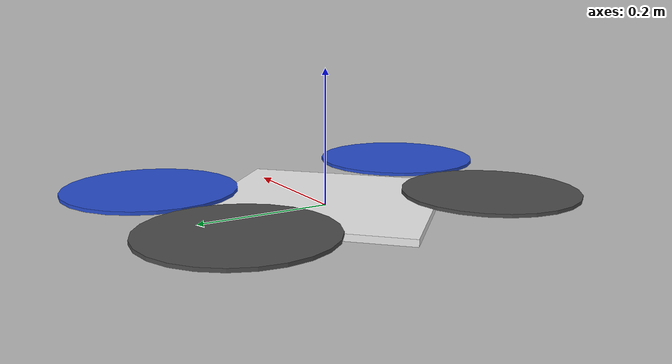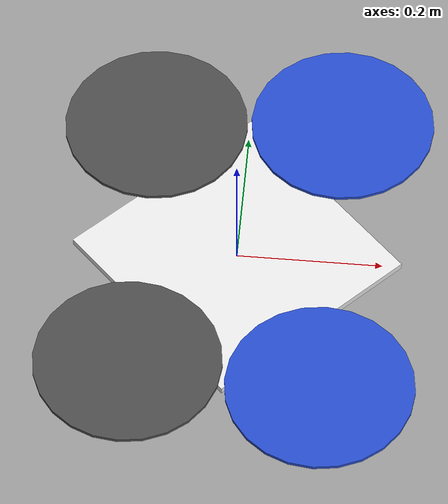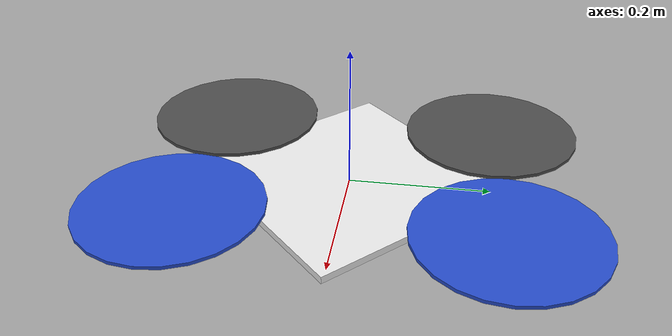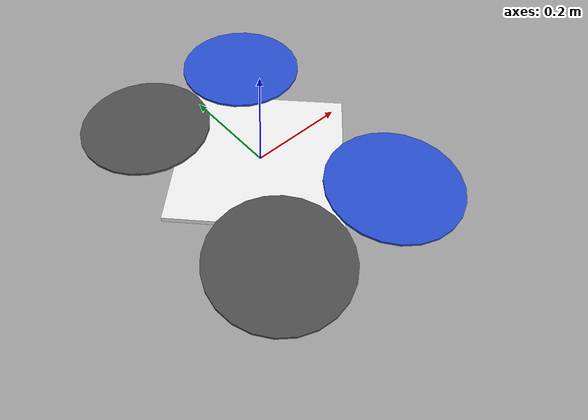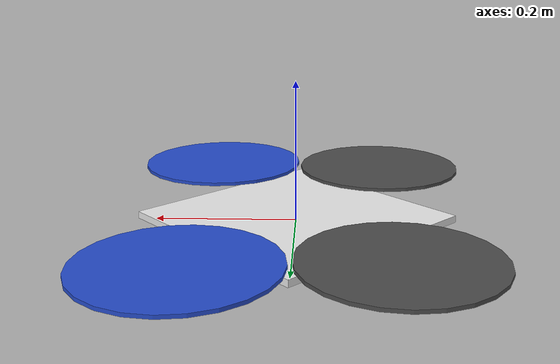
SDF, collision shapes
<?xml version='1.0'?>
<sdf version='1.6'>
  <model name='emborocket_new'>
    <link name='/imu_link'>
      <pose frame=''>-0 -0 0.75 0 -0 0</pose>
      <inertial>
        <pose frame=''>0 0 0 0 -0 0</pose>
        <mass>0.015</mass>
        <inertia>
          <ixx>1e-05</ixx>
          <ixy>0</ixy>
          <ixz>0</ixz>
          <iyy>1e-05</iyy>
          <iyz>0</iyz>
          <izz>1e-05</izz>
        </inertia>
      </inertial>
      <self_collide>0</self_collide>
      <enable_wind>0</enable_wind>
      <kinematic>0</kinematic>
      <gravity>1</gravity>
    </link>
    <link name='base_link'>
      <pose frame=''>-0 -0 0.75 0 -0 0</pose>
      <inertial>
        <pose frame=''>0 0 0 0 -0 0</pose>
        <mass>1</mass>
        <inertia>
          <ixx>0.0194167</ixx>
          <ixy>0</ixy>
          <ixz>0</ixz>
          <iyy>0.0194167</iyy>
          <iyz>0</iyz>
          <izz>0.0368167</izz>
        </inertia>
      </inertial>
      <gravity>1</gravity>
      <velocity_decay/>
      <self_collide>0</self_collide>
      <enable_wind>0</enable_wind>
      <kinematic>0</kinematic>
      <visual name='base_link_inertia_visual'>
        <pose frame=''>0 0 -0.75 0 -0 0</pose>
        <geometry>
          <mesh>
            <scale>0.001 0.001 0.001</scale>
            <uri>model://rotors_description/meshes/rocket_body.stl</uri>
          </mesh>
        </geometry>
        <material>
          <script>
            <name>Gazebo/White</name>
            <uri>file://media/materials/scripts/gazebo.material</uri>
          </script>
          <shader type='pixel'>
            <normal_map>__default__</normal_map>
          </shader>
          <ambient>1 1 1 1</ambient>
          <diffuse>1 1 1 1</diffuse>
          <specular>0 0 0 1</specular>
          <emissive>0 0 0 1</emissive>
        </material>
        <transparency>0</transparency>
        <cast_shadows>1</cast_shadows>
      </visual>
      <collision name='base_link_inertia_collision'>
        <laser_retro>0</laser_retro>
        <max_contacts>10</max_contacts>
        <pose frame=''>0 0 -0.745 0 -0 0.78</pose>
        <geometry>
          <box>
            <size>0.32 0.32 0.01</size>
          </box>
        </geometry>
        <surface>
          <friction>
            <ode>
              <mu>1</mu>
              <mu2>1</mu2>
              <fdir1>0 0 0</fdir1>
              <slip1>0</slip1>
              <slip2>0</slip2>
            </ode>
            <torsional>
              <coefficient>1</coefficient>
              <patch_radius>0</patch_radius>
              <surface_radius>0</surface_radius>
              <use_patch_radius>1</use_patch_radius>
              <ode>
                <slip>0</slip>
              </ode>
            </torsional>
          </friction>
          <bounce>
            <restitution_coefficient>0</restitution_coefficient>
            <threshold>1e+06</threshold>
          </bounce>
          <contact>
            <collide_without_contact>0</collide_without_contact>
            <collide_without_contact_bitmask>1</collide_without_contact_bitmask>
            <collide_bitmask>1</collide_bitmask>
            <ode>
              <soft_cfm>0</soft_cfm>
              <soft_erp>0.2</soft_erp>
              <kp>1e+13</kp>
              <kd>1</kd>
              <max_vel>0</max_vel>
              <min_depth>0.001</min_depth>
            </ode>
            <bullet>
              <split_impulse>1</split_impulse>
              <split_impulse_penetration_threshold>-0.01</split_impulse_penetration_threshold>
              <soft_cfm>0</soft_cfm>
              <soft_erp>0.2</soft_erp>
              <kp>1e+13</kp>
              <kd>1</kd>
            </bullet>
          </contact>
        </surface>
      </collision>
    </link>
    <link name='rotor_0'>
      <pose frame=''>0.13 -0.22 0.023 0 -0 0</pose>
      <inertial>
        <pose frame=''>0 0 0 0 -0 0</pose>
        <mass>0.005</mass>
        <inertia>
          <ixx>9.7e-07</ixx>
          <ixy>0</ixy>
          <ixz>0</ixz>
          <iyy>0.0002731</iyy>
          <iyz>0</iyz>
          <izz>0.000274</izz>
        </inertia>
      </inertial>
      <gravity>1</gravity>
      <velocity_decay/>
      <self_collide>0</self_collide>
      <enable_wind>0</enable_wind>
      <kinematic>0</kinematic>
      <visual name='rotor_0_visual'>
        <pose frame=''>0 -0.009 0 1.571 -0 0</pose>
        <geometry>
          <mesh>
            <uri>/home/lukas/Firmware/Tools/sitl_gazebo/models/rotors_description/meshes/propeller.stl</uri>
            <scale>0.001 0.001 0.001</scale>
          </mesh>
        </geometry>
        <material>
          <script>
            <name>Gazebo/Blue</name>
            <uri>file://media/materials/scripts/gazebo.material</uri>
          </script>
          <shader type='pixel'>
            <normal_map>__default__</normal_map>
          </shader>
          <ambient>0 0 1 1</ambient>
          <diffuse>0 0 1 1</diffuse>
          <specular>0.1 0.1 0.1 1</specular>
          <emissive>0 0 0 1</emissive>
        </material>
        <transparency>0</transparency>
        <cast_shadows>1</cast_shadows>
      </visual>
      <collision name='rotor_0_collision'>
        <laser_retro>0</laser_retro>
        <max_contacts>10</max_contacts>
        <pose frame=''>0 0 0 0 -0 0</pose>
        <geometry>
          <cylinder>
            <radius>0.128</radius>
            <length>0.005</length>
          </cylinder>
        </geometry>
        <surface>
          <friction>
            <ode>
              <mu>1</mu>
              <mu2>1</mu2>
              <fdir1>0 0 0</fdir1>
              <slip1>0</slip1>
              <slip2>0</slip2>
            </ode>
            <torsional>
              <coefficient>1</coefficient>
              <patch_radius>0</patch_radius>
              <surface_radius>0</surface_radius>
              <use_patch_radius>1</use_patch_radius>
              <ode>
                <slip>0</slip>
              </ode>
            </torsional>
          </friction>
          <bounce>
            <restitution_coefficient>0</restitution_coefficient>
            <threshold>1e+06</threshold>
          </bounce>
          <contact>
            <collide_without_contact>0</collide_without_contact>
            <collide_without_contact_bitmask>1</collide_without_contact_bitmask>
            <collide_bitmask>1</collide_bitmask>
            <ode>
              <soft_cfm>0</soft_cfm>
              <soft_erp>0.2</soft_erp>
              <kp>1e+13</kp>
              <kd>1</kd>
              <max_vel>0.01</max_vel>
              <min_depth>0</min_depth>
            </ode>
            <bullet>
              <split_impulse>1</split_impulse>
              <split_impulse_penetration_threshold>-0.01</split_impulse_penetration_threshold>
              <soft_cfm>0</soft_cfm>
              <soft_erp>0.2</soft_erp>
              <kp>1e+13</kp>
              <kd>1</kd>
            </bullet>
          </contact>
        </surface>
      </collision>
    </link>
    <link name='rotor_1'>
      <pose frame=''>-0.13 0.2 0.023 0 -0 0</pose>
      <inertial>
        <pose frame=''>0 0 0 0 -0 0</pose>
        <mass>0.005</mass>
        <inertia>
          <ixx>9.75e-07</ixx>
          <ixy>0</ixy>
          <ixz>0</ixz>
          <iyy>0.000273104</iyy>
          <iyz>0</iyz>
          <izz>0.000274004</izz>
        </inertia>
      </inertial>
      <gravity>1</gravity>
      <velocity_decay/>
      <self_collide>0</self_collide>
      <enable_wind>0</enable_wind>
      <kinematic>0</kinematic>
      <visual name='rotor_1_visual'>
        <pose frame=''>0 0 0 0 -0 0</pose>
        <geometry>
          <mesh>
            <scale>1 1 1</scale>
            <uri>model://rotors_description/meshes/iris_prop_ccw.dae</uri>
          </mesh>
        </geometry>
        <material>
          <script>
            <name>Gazebo/DarkGrey</name>
            <uri>file://media/materials/scripts/gazebo.material</uri>
          </script>
          <shader type='pixel'/>
        </material>
        <transparency>0</transparency>
        <cast_shadows>1</cast_shadows>
      </visual>
      <collision name='rotor_1_collision'>
        <laser_retro>0</laser_retro>
        <max_contacts>10</max_contacts>
        <pose frame=''>0 0 0 0 -0 0</pose>
        <geometry>
          <cylinder>
            <radius>0.128</radius>
            <length>0.005</length>
          </cylinder>
        </geometry>
        <surface>
          <friction>
            <ode>
              <mu>1</mu>
              <mu2>1</mu2>
              <fdir1>0 0 0</fdir1>
              <slip1>0</slip1>
              <slip2>0</slip2>
            </ode>
            <torsional>
              <coefficient>1</coefficient>
              <patch_radius>0</patch_radius>
              <surface_radius>0</surface_radius>
              <use_patch_radius>1</use_patch_radius>
              <ode>
                <slip>0</slip>
              </ode>
            </torsional>
          </friction>
          <bounce>
            <restitution_coefficient>0</restitution_coefficient>
            <threshold>1e+06</threshold>
          </bounce>
          <contact>
            <collide_without_contact>0</collide_without_contact>
            <collide_without_contact_bitmask>1</collide_without_contact_bitmask>
            <collide_bitmask>1</collide_bitmask>
            <ode>
              <soft_cfm>0</soft_cfm>
              <soft_erp>0.2</soft_erp>
              <kp>1e+13</kp>
              <kd>1</kd>
              <max_vel>0.01</max_vel>
              <min_depth>0</min_depth>
            </ode>
            <bullet>
              <split_impulse>1</split_impulse>
              <split_impulse_penetration_threshold>-0.01</split_impulse_penetration_threshold>
              <soft_cfm>0</soft_cfm>
              <soft_erp>0.2</soft_erp>
              <kp>1e+13</kp>
              <kd>1</kd>
            </bullet>
          </contact>
        </surface>
      </collision>
    </link>
    <link name='rotor_2'>
      <pose frame=''>0.13 0.22 0.023 0 -0 0</pose>
      <inertial>
        <pose frame=''>0 0 0 0 -0 0</pose>
        <mass>0.005</mass>
        <inertia>
          <ixx>9.75e-07</ixx>
          <ixy>0</ixy>
          <ixz>0</ixz>
          <iyy>0.000273104</iyy>
          <iyz>0</iyz>
          <izz>0.000274004</izz>
        </inertia>
      </inertial>
      <gravity>1</gravity>
      <velocity_decay/>
      <self_collide>0</self_collide>
      <enable_wind>0</enable_wind>
      <kinematic>0</kinematic>
      <visual name='rotor_2_visual'>
        <pose frame=''>0 0 0 0 -0 0</pose>
        <geometry>
          <mesh>
            <scale>1 1 1</scale>
            <uri>model://rotors_description/meshes/iris_prop_cw.dae</uri>
          </mesh>
        </geometry>
        <material>
          <script>
            <name>Gazebo/Blue</name>
            <uri>file://media/materials/scripts/gazebo.material</uri>
          </script>
          <shader type='pixel'/>
        </material>
        <transparency>0</transparency>
        <cast_shadows>1</cast_shadows>
      </visual>
      <collision name='rotor_2_collision'>
        <laser_retro>0</laser_retro>
        <max_contacts>10</max_contacts>
        <pose frame=''>0 0 0 0 -0 0</pose>
        <geometry>
          <cylinder>
            <radius>0.128</radius>
            <length>0.005</length>
          </cylinder>
        </geometry>
        <surface>
          <friction>
            <ode>
              <mu>1</mu>
              <mu2>1</mu2>
              <fdir1>0 0 0</fdir1>
              <slip1>0</slip1>
              <slip2>0</slip2>
            </ode>
            <torsional>
              <coefficient>1</coefficient>
              <patch_radius>0</patch_radius>
              <surface_radius>0</surface_radius>
              <use_patch_radius>1</use_patch_radius>
              <ode>
                <slip>0</slip>
              </ode>
            </torsional>
          </friction>
          <bounce>
            <restitution_coefficient>0</restitution_coefficient>
            <threshold>1e+06</threshold>
          </bounce>
          <contact>
            <collide_without_contact>0</collide_without_contact>
            <collide_without_contact_bitmask>1</collide_without_contact_bitmask>
            <collide_bitmask>1</collide_bitmask>
            <ode>
              <soft_cfm>0</soft_cfm>
              <soft_erp>0.2</soft_erp>
              <kp>1e+13</kp>
              <kd>1</kd>
              <max_vel>0.01</max_vel>
              <min_depth>0</min_depth>
            </ode>
            <bullet>
              <split_impulse>1</split_impulse>
              <split_impulse_penetration_threshold>-0.01</split_impulse_penetration_threshold>
              <soft_cfm>0</soft_cfm>
              <soft_erp>0.2</soft_erp>
              <kp>1e+13</kp>
              <kd>1</kd>
            </bullet>
          </contact>
        </surface>
      </collision>
    </link>
    <link name='rotor_3'>
      <pose frame=''>-0.13 -0.2 0.023 0 -0 0</pose>
      <inertial>
        <pose frame=''>0 0 0 0 -0 0</pose>
        <mass>0.005</mass>
        <inertia>
          <ixx>9.75e-07</ixx>
          <ixy>0</ixy>
          <ixz>0</ixz>
          <iyy>0.000273104</iyy>
          <iyz>0</iyz>
          <izz>0.000274004</izz>
        </inertia>
      </inertial>
      <gravity>1</gravity>
      <velocity_decay/>
      <self_collide>0</self_collide>
      <enable_wind>0</enable_wind>
      <kinematic>0</kinematic>
      <visual name='rotor_3_visual'>
        <pose frame=''>0 0 0 0 -0 0</pose>
        <geometry>
          <mesh>
            <scale>1 1 1</scale>
            <uri>model://rotors_description/meshes/iris_prop_cw.dae</uri>
          </mesh>
        </geometry>
        <material>
          <script>
            <name>Gazebo/DarkGrey</name>
            <uri>file://media/materials/scripts/gazebo.material</uri>
          </script>
          <shader type='pixel'/>
        </material>
        <transparency>0</transparency>
        <cast_shadows>1</cast_shadows>
      </visual>
      <collision name='rotor_3_collision'>
        <laser_retro>0</laser_retro>
        <max_contacts>10</max_contacts>
        <pose frame=''>0 0 0 0 -0 0</pose>
        <geometry>
          <cylinder>
            <radius>0.128</radius>
            <length>0.005</length>
          </cylinder>
        </geometry>
        <surface>
          <friction>
            <ode>
              <mu>1</mu>
              <mu2>1</mu2>
              <fdir1>0 0 0</fdir1>
              <slip1>0</slip1>
              <slip2>0</slip2>
            </ode>
            <torsional>
              <coefficient>1</coefficient>
              <patch_radius>0</patch_radius>
              <surface_radius>0</surface_radius>
              <use_patch_radius>1</use_patch_radius>
              <ode>
                <slip>0</slip>
              </ode>
            </torsional>
          </friction>
          <bounce>
            <restitution_coefficient>0</restitution_coefficient>
            <threshold>1e+06</threshold>
          </bounce>
          <contact>
            <collide_without_contact>0</collide_without_contact>
            <collide_without_contact_bitmask>1</collide_without_contact_bitmask>
            <collide_bitmask>1</collide_bitmask>
            <ode>
              <soft_cfm>0</soft_cfm>
              <soft_erp>0.2</soft_erp>
              <kp>1e+13</kp>
              <kd>1</kd>
              <max_vel>0.01</max_vel>
              <min_depth>0</min_depth>
            </ode>
            <bullet>
              <split_impulse>1</split_impulse>
              <split_impulse_penetration_threshold>-0.01</split_impulse_penetration_threshold>
              <soft_cfm>0</soft_cfm>
              <soft_erp>0.2</soft_erp>
              <kp>1e+13</kp>
              <kd>1</kd>
            </bullet>
          </contact>
        </surface>
      </collision>
    </link>
    <joint name='/imu_joint' type='revolute'>
      <parent>base_link</parent>
      <child>/imu_link</child>
      <pose frame=''>0 0 0 0 -0 0</pose>
      <axis>
        <xyz>1 0 0</xyz>
        <use_parent_model_frame>1</use_parent_model_frame>
        <limit>
          <lower>0</lower>
          <upper>0</upper>
          <effort>0</effort>
          <velocity>0</velocity>
        </limit>
        <dynamics>
          <spring_reference>0</spring_reference>
          <spring_stiffness>0</spring_stiffness>
          <damping>0</damping>
          <friction>0</friction>
        </dynamics>
      </axis>
      <physics>
        <ode>
          <limit>
            <cfm>0</cfm>
            <erp>0.2</erp>
          </limit>
          <suspension>
            <cfm>0</cfm>
            <erp>0.2</erp>
          </suspension>
        </ode>
      </physics>
    </joint>
    <joint name='rotor_0_joint' type='revolute'>
      <parent>base_link</parent>
      <child>rotor_0</child>
      <pose frame=''>0 0 0 0 -0 0</pose>
      <axis>
        <xyz>0 0 1</xyz>
        <use_parent_model_frame>1</use_parent_model_frame>
        <limit>
          <lower>-1e+16</lower>
          <upper>1e+16</upper>
          <effort>-1</effort>
          <velocity>-1</velocity>
        </limit>
        <dynamics>
          <spring_reference>0</spring_reference>
          <spring_stiffness>0</spring_stiffness>
          <damping>0</damping>
          <friction>0</friction>
        </dynamics>
      </axis>
      <physics>
        <ode>
          <limit>
            <cfm>0</cfm>
            <erp>0.2</erp>
          </limit>
          <suspension>
            <cfm>0</cfm>
            <erp>0.2</erp>
          </suspension>
        </ode>
      </physics>
    </joint>
    <joint name='rotor_1_joint' type='revolute'>
      <parent>base_link</parent>
      <child>rotor_1</child>
      <pose frame=''>0 0 0 0 -0 0</pose>
      <axis>
        <xyz>0 0 1</xyz>
        <use_parent_model_frame>1</use_parent_model_frame>
        <limit>
          <lower>-1e+16</lower>
          <upper>1e+16</upper>
          <effort>-1</effort>
          <velocity>-1</velocity>
        </limit>
        <dynamics>
          <spring_reference>0</spring_reference>
          <spring_stiffness>0</spring_stiffness>
          <damping>0</damping>
          <friction>0</friction>
        </dynamics>
      </axis>
      <physics>
        <ode>
          <limit>
            <cfm>0</cfm>
            <erp>0.2</erp>
          </limit>
          <suspension>
            <cfm>0</cfm>
            <erp>0.2</erp>
          </suspension>
        </ode>
      </physics>
    </joint>
    <joint name='rotor_2_joint' type='revolute'>
      <parent>base_link</parent>
      <child>rotor_2</child>
      <pose frame=''>0 0 0 0 -0 0</pose>
      <axis>
        <xyz>0 0 1</xyz>
        <use_parent_model_frame>1</use_parent_model_frame>
        <limit>
          <lower>-1e+16</lower>
          <upper>1e+16</upper>
          <effort>-1</effort>
          <velocity>-1</velocity>
        </limit>
        <dynamics>
          <spring_reference>0</spring_reference>
          <spring_stiffness>0</spring_stiffness>
          <damping>0</damping>
          <friction>0</friction>
        </dynamics>
      </axis>
      <physics>
        <ode>
          <limit>
            <cfm>0</cfm>
            <erp>0.2</erp>
          </limit>
          <suspension>
            <cfm>0</cfm>
            <erp>0.2</erp>
          </suspension>
        </ode>
      </physics>
    </joint>
    <joint name='rotor_3_joint' type='revolute'>
      <parent>base_link</parent>
      <child>rotor_3</child>
      <pose frame=''>0 0 0 0 -0 0</pose>
      <axis>
        <xyz>0 0 1</xyz>
        <use_parent_model_frame>1</use_parent_model_frame>
        <limit>
          <lower>-1e+16</lower>
          <upper>1e+16</upper>
          <effort>-1</effort>
          <velocity>-1</velocity>
        </limit>
        <dynamics>
          <spring_reference>0</spring_reference>
          <spring_stiffness>0</spring_stiffness>
          <damping>0</damping>
          <friction>0</friction>
        </dynamics>
      </axis>
      <physics>
        <ode>
          <limit>
            <cfm>0</cfm>
            <erp>0.2</erp>
          </limit>
          <suspension>
            <cfm>0</cfm>
            <erp>0.2</erp>
          </suspension>
        </ode>
      </physics>
    </joint>
    <static>0</static>
    <allow_auto_disable>1</allow_auto_disable>
    <plugin name='back_left_motor_model' filename='libgazebo_motor_model.so'>
      <robotNamespace/>
      <jointName>rotor_1_joint</jointName>
      <linkName>rotor_1</linkName>
      <turningDirection>ccw</turningDirection>
      <timeConstantUp>0.0125</timeConstantUp>
      <timeConstantDown>0.025</timeConstantDown>
      <maxRotVelocity>1100</maxRotVelocity>
      <motorConstant>5.84e-06</motorConstant>
      <momentConstant>0.06</momentConstant>
      <commandSubTopic>/gazebo/command/motor_speed</commandSubTopic>
      <motorNumber>1</motorNumber>
      <rotorDragCoefficient>0.000175</rotorDragCoefficient>
      <rollingMomentCoefficient>1e-06</rollingMomentCoefficient>
      <motorSpeedPubTopic>/motor_speed/1</motorSpeedPubTopic>
      <rotorVelocitySlowdownSim>10</rotorVelocitySlowdownSim>
    </plugin>
    <plugin name='back_right_motor_model' filename='libgazebo_motor_model.so'>
      <robotNamespace/>
      <jointName>rotor_3_joint</jointName>
      <linkName>rotor_3</linkName>
      <turningDirection>cw</turningDirection>
      <timeConstantUp>0.0125</timeConstantUp>
      <timeConstantDown>0.025</timeConstantDown>
      <maxRotVelocity>1100</maxRotVelocity>
      <motorConstant>5.84e-06</motorConstant>
      <momentConstant>0.06</momentConstant>
      <commandSubTopic>/gazebo/command/motor_speed</commandSubTopic>
      <motorNumber>3</motorNumber>
      <rotorDragCoefficient>0.000175</rotorDragCoefficient>
      <rollingMomentCoefficient>1e-06</rollingMomentCoefficient>
      <motorSpeedPubTopic>/motor_speed/3</motorSpeedPubTopic>
      <rotorVelocitySlowdownSim>10</rotorVelocitySlowdownSim>
    </plugin>
    <plugin name='barometer_plugin' filename='libgazebo_barometer_plugin.so'>
      <robotNamespace/>
      <pubRate>50</pubRate>
      <baroTopic>/baro</baroTopic>
      <baroDriftPaPerSec>0</baroDriftPaPerSec>
    </plugin>
    <plugin name='front_left_motor_model' filename='libgazebo_motor_model.so'>
      <robotNamespace/>
      <jointName>rotor_2_joint</jointName>
      <linkName>rotor_2</linkName>
      <turningDirection>cw</turningDirection>
      <timeConstantUp>0.0125</timeConstantUp>
      <timeConstantDown>0.025</timeConstantDown>
      <maxRotVelocity>1100</maxRotVelocity>
      <motorConstant>5.84e-06</motorConstant>
      <momentConstant>0.06</momentConstant>
      <commandSubTopic>/gazebo/command/motor_speed</commandSubTopic>
      <motorNumber>2</motorNumber>
      <rotorDragCoefficient>0.000175</rotorDragCoefficient>
      <rollingMomentCoefficient>1e-06</rollingMomentCoefficient>
      <motorSpeedPubTopic>/motor_speed/2</motorSpeedPubTopic>
      <rotorVelocitySlowdownSim>10</rotorVelocitySlowdownSim>
    </plugin>
    <plugin name='front_right_motor_model' filename='libgazebo_motor_model.so'>
      <robotNamespace/>
      <jointName>rotor_0_joint</jointName>
      <linkName>rotor_0</linkName>
      <turningDirection>ccw</turningDirection>
      <timeConstantUp>0.0125</timeConstantUp>
      <timeConstantDown>0.025</timeConstantDown>
      <maxRotVelocity>1100</maxRotVelocity>
      <motorConstant>5.84e-06</motorConstant>
      <momentConstant>0.06</momentConstant>
      <commandSubTopic>/gazebo/command/motor_speed</commandSubTopic>
      <motorNumber>0</motorNumber>
      <rotorDragCoefficient>0.000175</rotorDragCoefficient>
      <rollingMomentCoefficient>1e-06</rollingMomentCoefficient>
      <motorSpeedPubTopic>/motor_speed/0</motorSpeedPubTopic>
      <rotorVelocitySlowdownSim>10</rotorVelocitySlowdownSim>
    </plugin>
    <plugin name='groundtruth_plugin' filename='libgazebo_groundtruth_plugin.so'>
      <robotNamespace/>
    </plugin>
    <plugin name='magnetometer_plugin' filename='libgazebo_magnetometer_plugin.so'>
      <robotNamespace/>
      <pubRate>100</pubRate>
      <noiseDensity>0.0004</noiseDensity>
      <randomWalk>6.4e-06</randomWalk>
      <biasCorrelationTime>600</biasCorrelationTime>
      <magTopic>/mag</magTopic>
    </plugin>
    <plugin name='mavlink_interface' filename='libgazebo_mavlink_interface.so'>
      <robotNamespace/>
      <imuSubTopic>/imu</imuSubTopic>
      <magSubTopic>/mag</magSubTopic>
      <baroSubTopic>/baro</baroSubTopic>
      <mavlink_addr>INADDR_ANY</mavlink_addr>
      <mavlink_udp_port>14560</mavlink_udp_port>
      <mavlink_tcp_port>4560</mavlink_tcp_port>
      <serialEnabled>0</serialEnabled>
      <serialDevice>/dev/ttyACM0</serialDevice>
      <baudRate>921600</baudRate>
      <qgc_addr>INADDR_ANY</qgc_addr>
      <qgc_udp_port>14550</qgc_udp_port>
      <sdk_addr>INADDR_ANY</sdk_addr>
      <sdk_udp_port>14540</sdk_udp_port>
      <hil_mode>0</hil_mode>
      <hil_state_level>0</hil_state_level>
      <vehicle_is_tailsitter>0</vehicle_is_tailsitter>
      <send_vision_estimation>0</send_vision_estimation>
      <send_odometry>1</send_odometry>
      <enable_lockstep>1</enable_lockstep>
      <use_tcp>1</use_tcp>
      <motorSpeedCommandPubTopic>/gazebo/command/motor_speed</motorSpeedCommandPubTopic>
      <control_channels>
        <channel name='rotor1'>
          <input_index>0</input_index>
          <input_offset>0</input_offset>
          <input_scaling>1000</input_scaling>
          <zero_position_disarmed>0</zero_position_disarmed>
          <zero_position_armed>100</zero_position_armed>
          <joint_control_type>velocity</joint_control_type>
        </channel>
        <channel name='rotor2'>
          <input_index>1</input_index>
          <input_offset>0</input_offset>
          <input_scaling>1000</input_scaling>
          <zero_position_disarmed>0</zero_position_disarmed>
          <zero_position_armed>100</zero_position_armed>
          <joint_control_type>velocity</joint_control_type>
        </channel>
        <channel name='rotor3'>
          <input_index>2</input_index>
          <input_offset>0</input_offset>
          <input_scaling>1000</input_scaling>
          <zero_position_disarmed>0</zero_position_disarmed>
          <zero_position_armed>100</zero_position_armed>
          <joint_control_type>velocity</joint_control_type>
        </channel>
        <channel name='rotor4'>
          <input_index>3</input_index>
          <input_offset>0</input_offset>
          <input_scaling>1000</input_scaling>
          <zero_position_disarmed>0</zero_position_disarmed>
          <zero_position_armed>100</zero_position_armed>
          <joint_control_type>velocity</joint_control_type>
        </channel>
        <channel name='rotor5'>
          <input_index>4</input_index>
          <input_offset>1</input_offset>
          <input_scaling>324.6</input_scaling>
          <zero_position_disarmed>0</zero_position_disarmed>
          <zero_position_armed>0</zero_position_armed>
          <joint_control_type>velocity</joint_control_type>
          <joint_control_pid>
            <p>0.1</p>
            <i>0</i>
            <d>0</d>
            <iMax>0.0</iMax>
            <iMin>0.0</iMin>
            <cmdMax>2</cmdMax>
            <cmdMin>-2</cmdMin>
          </joint_control_pid>
          <joint_name>zephyr_delta_wing::propeller_joint</joint_name>
        </channel>
        <channel name='rotor6'>
          <input_index>5</input_index>
          <input_offset>0</input_offset>
          <input_scaling>0.524</input_scaling>
          <zero_position_disarmed>0</zero_position_disarmed>
          <zero_position_armed>0</zero_position_armed>
          <joint_control_type>position</joint_control_type>
          <joint_name>zephyr_delta_wing::flap_left_joint</joint_name>
          <joint_control_pid>
            <p>10.0</p>
            <i>0</i>
            <d>0</d>
            <iMax>0</iMax>
            <iMin>0</iMin>
            <cmdMax>20</cmdMax>
            <cmdMin>-20</cmdMin>
          </joint_control_pid>
        </channel>
        <channel name='rotor7'>
          <input_index>6</input_index>
          <input_offset>0</input_offset>
          <input_scaling>0.524</input_scaling>
          <zero_position_disarmed>0</zero_position_disarmed>
          <zero_position_armed>0</zero_position_armed>
          <joint_control_type>position</joint_control_type>
          <joint_name>zephyr_delta_wing::flap_right_joint</joint_name>
          <joint_control_pid>
            <p>10.0</p>
            <i>0</i>
            <d>0</d>
            <iMax>0</iMax>
            <iMin>0</iMin>
            <cmdMax>20</cmdMax>
            <cmdMin>-20</cmdMin>
          </joint_control_pid>
        </channel>
        <channel name='rotor8'>
          <input_index>7</input_index>
          <input_offset>0</input_offset>
          <input_scaling>0.524</input_scaling>
          <zero_position_disarmed>0</zero_position_disarmed>
          <zero_position_armed>0</zero_position_armed>
          <joint_control_type>position</joint_control_type>
        </channel>
      </control_channels>
    </plugin>
    <plugin name='rosbag' filename='libgazebo_multirotor_base_plugin.so'>
      <robotNamespace/>
      <linkName>base_link</linkName>
      <rotorVelocitySlowdownSim>10</rotorVelocitySlowdownSim>
    </plugin>
    <plugin name='rotors_gazebo_imu_plugin' filename='libgazebo_imu_plugin.so'>
      <robotNamespace/>
      <linkName>/imu_link</linkName>
      <imuTopic>/imu</imuTopic>
      <gyroscopeNoiseDensity>0.00018665</gyroscopeNoiseDensity>
      <gyroscopeRandomWalk>3.8785e-05</gyroscopeRandomWalk>
      <gyroscopeBiasCorrelationTime>1000.0</gyroscopeBiasCorrelationTime>
      <gyroscopeTurnOnBiasSigma>0.0087</gyroscopeTurnOnBiasSigma>
      <accelerometerNoiseDensity>0.00186</accelerometerNoiseDensity>
      <accelerometerRandomWalk>0.006</accelerometerRandomWalk>
      <accelerometerBiasCorrelationTime>300.0</accelerometerBiasCorrelationTime>
      <accelerometerTurnOnBiasSigma>0.196</accelerometerTurnOnBiasSigma>
    </plugin>
  </model>
</sdf>
